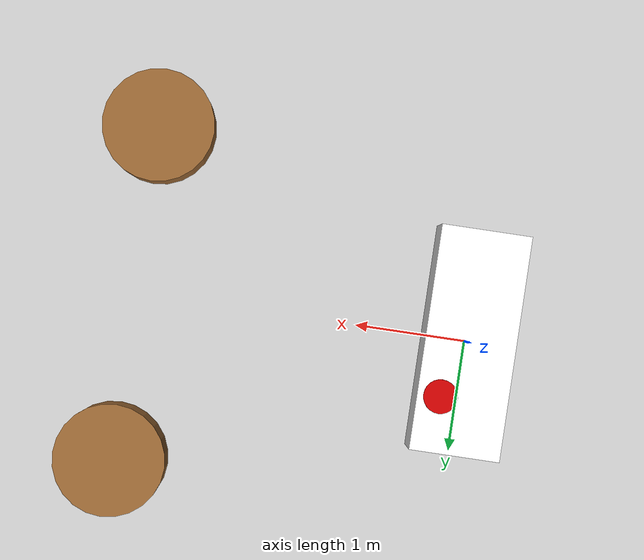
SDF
<?xml version="1.0" ?>
<sdf version="1.6">
  <world name="pizzeria_world">

    <physics name='default_physics' default='0' type='ode'>
      <gravity>0 0 -9.8066</gravity>
      <ode>
        <solver>
          <type>quick</type>
          <iters>10</iters>
          <sor>1.3</sor>
          <use_dynamic_moi_rescaling>0</use_dynamic_moi_rescaling>
        </solver>
        <constraints>
          <cfm>0</cfm>
          <erp>0.2</erp>
          <contact_max_correcting_vel>100</contact_max_correcting_vel>
          <contact_surface_layer>0.001</contact_surface_layer>
        </constraints>
      </ode>
      <max_step_size>0.004</max_step_size>
      <real_time_factor>1</real_time_factor>
      <real_time_update_rate>250</real_time_update_rate>
      <magnetic_field>6.0e-6 2.3e-5 -4.2e-5</magnetic_field>
    </physics>

    <light type="directional" name="sun">
      <cast_shadows>true</cast_shadows>
      <pose>0 0 10 0 0 0</pose>
      <diffuse>0.8 0.8 0.8 1</diffuse>
      <specular>0.2 0.2 0.2 1</specular>
      <attenuation>
        <range>1000</range>
        <constant>0.9</constant>
        <linear>0.01</linear>
        <quadratic>0.001</quadratic>
      </attenuation>
      <direction>-0.5 0.1 -0.9</direction>
    </light>

    <model name="ground_plane">
      <static>true</static>
      <link name="link">
        <collision name="collision">
          <geometry>
            <plane>
              <normal>0 0 1</normal>
              <size>100 100</size>
            </plane>
          </geometry>
        </collision>
        <visual name="visual">
          <geometry>
            <plane>
              <normal>0 0 1</normal>
              <size>100 100</size>
            </plane>
          </geometry>
          <material>
            <ambient>0.8 0.8 0.8 1</ambient>
            <diffuse>0.8 0.8 0.8 1</diffuse>
            <specular>0.8 0.8 0.8 1</specular>
          </material>
        </visual>
      </link>
    </model>

    <model name="kitchen_counter">
      <static>true</static>
      <pose>0 0 0.45 0 0 0</pose>
      <link name="link">
        <collision name="collision">
          <geometry>
            <box>
              <size>0.8 2.0 0.9</size>
            </box>
          </geometry>
        </collision>
        <visual name="visual">
          <geometry>
            <box>
              <size>0.8 2.0 0.9</size>
            </box>
          </geometry>
          <material>
            <ambient>1 1 1 1</ambient>
            <diffuse>1 1 1 1</diffuse>
          </material>
        </visual>
      </link>
    </model>

    <include>
    <uri>model://pizza</uri>
    <name>my_pizza</name>
    <pose>0.2 0.5 1 0 0 0</pose>
    </include>

    <model name="table_1">
      <static>true</static>
      <pose>3.0 1.5 0.35 0 0 0</pose>
      <link name="link">
        <collision name="collision">
          <geometry>
            <cylinder>
              <radius>0.5</radius>
              <length>0.7</length>
            </cylinder>
          </geometry>
        </collision>
        <visual name="visual">
          <geometry>
            <cylinder>
              <radius>0.5</radius>
              <length>0.7</length>
            </cylinder>
          </geometry>
          <material>
            <ambient>0.6 0.4 0.2 1</ambient>
            <diffuse>0.6 0.4 0.2 1</diffuse>
          </material>
        </visual>
      </link>
    </model>

    <model name="table_2">
      <static>true</static>
      <pose>3.0 -1.5 0.35 0 0 0</pose>
      <link name="link">
        <collision name="collision">
          <geometry>
            <cylinder>
              <radius>0.5</radius>
              <length>0.7</length>
            </cylinder>
          </geometry>
        </collision>
        <visual name="visual">
          <geometry>
            <cylinder>
              <radius>0.5</radius>
              <length>0.7</length>
            </cylinder>
          </geometry>
          <material>
             <ambient>0.6 0.4 0.2 1</ambient>
             <diffuse>0.6 0.4 0.2 1</diffuse>
          </material>
        </visual>
      </link>
    </model>

    <gui fullscreen='0'>
      <camera name='user_camera'>
        <pose>-4.0 0 4.0 0 0.6 0</pose>
        <view_controller>orbit</view_controller>
      </camera>
    </gui>

    <plugin
      filename="libignition-gazebo-physics-system.so"
      name="ignition::gazebo::systems::Physics">
    </plugin>
    <plugin
      filename="libignition-gazebo-user-commands-system.so"
      name="ignition::gazebo::systems::UserCommands">
    </plugin>
    <plugin
      filename="libignition-gazebo-scene-broadcaster-system.so"
      name="ignition::gazebo::systems::SceneBroadcaster">
    </plugin>

  </world>
</sdf>

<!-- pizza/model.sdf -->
<sdf version="1.6">
  <model name="pizza">
    <static>false</static>
    <link name="link">

      <inertial>
        <mass>0.5</mass>
        <inertia>
          <ixx>0.003</ixx>
          <ixy>0</ixy>
          <ixz>0</ixz>
          <iyy>0.003</iyy>
          <iyz>0</iyz>
          <izz>0.006</izz>
        </inertia>
      </inertial>

      <collision name="collision">
        <geometry>
          <cylinder>
            <radius>0.15</radius>
            <length>0.02</length>
          </cylinder>
        </geometry>
        <surface>
          <friction>
            <ode>
              <mu>100000.0</mu>
              <mu2>50.0</mu2>
            </ode>
          </friction>
          <contact>
            <ode>
              <kp>1000000.0</kp>
              <kd>1.0</kd>
            </ode>
          </contact>
        </surface>
      </collision>

      <visual name="visual">
        <geometry>
          <cylinder>
            <radius>0.15</radius>
            <length>0.02</length>
          </cylinder>
        </geometry>

        <material>
          <ambient>0.8 0.0 0.0 1</ambient>
          <diffuse>0.8 0.0 0.0 1</diffuse>
          <specular>0.1 0.1 0.1 1</specular>
          <emissive>0.3 0.0 0.0 1</emissive>
        </material>

      </visual>

    </link>
  </model>
</sdf>
